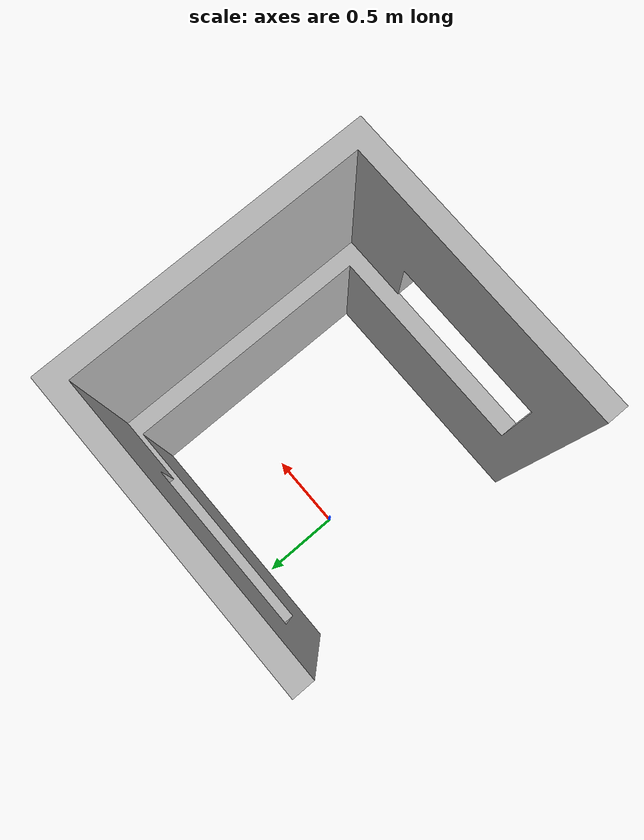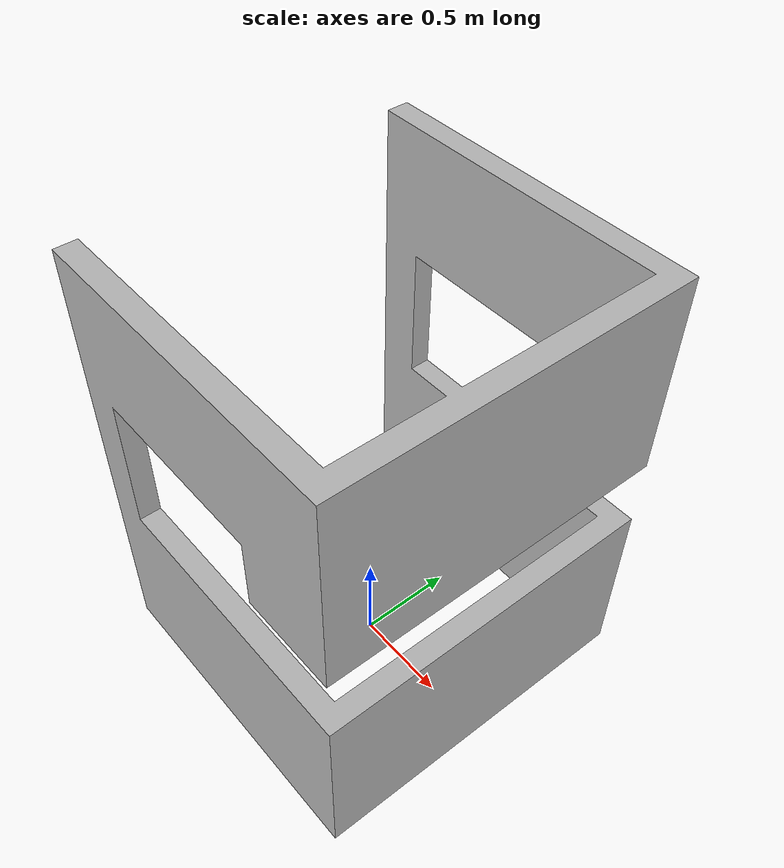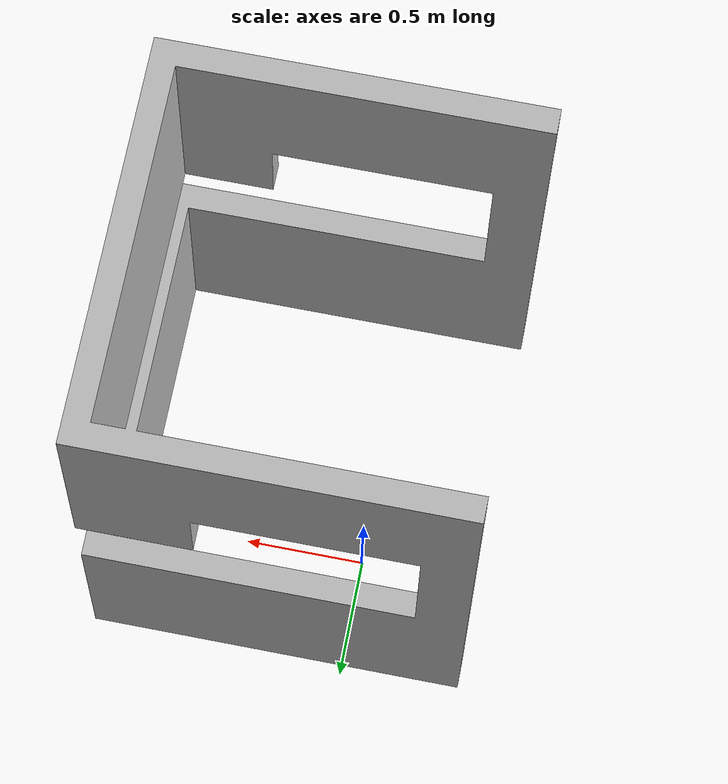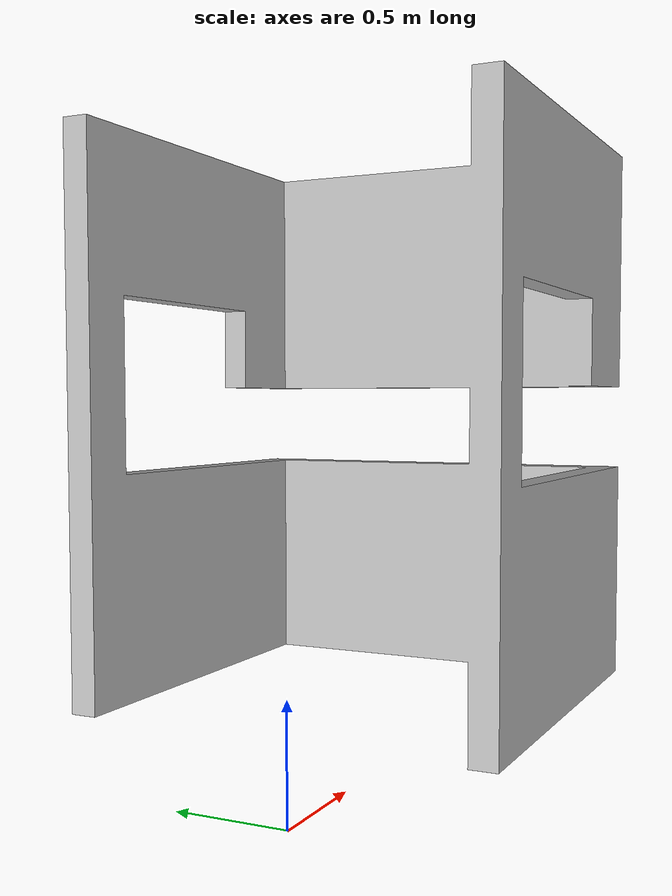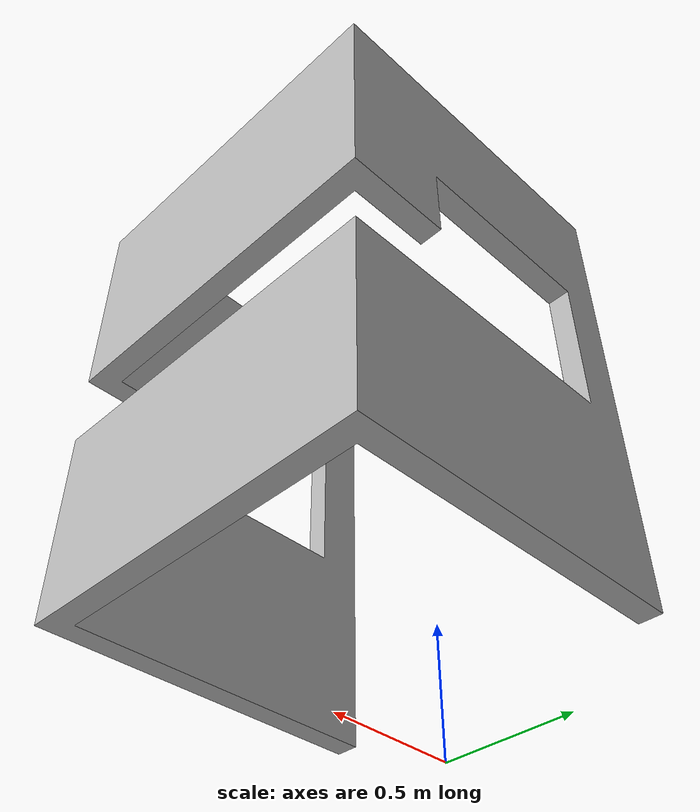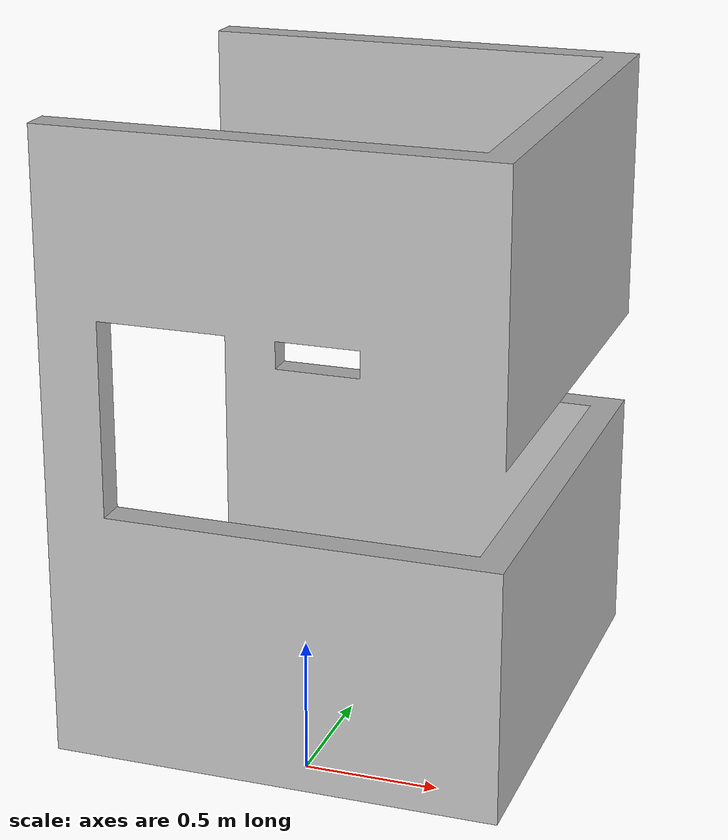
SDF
<sdf version='1.4'>

  <model name='box4'>
  <static>false</static>

  <link name="wall1">
    <pose>1 0.6 0.5 1.5708 0 -1.5708 </pose>
    <collision name="collision">
      <geometry>
        <mesh>
        <scale>1 1 1</scale>
        <uri>meshes/complex_obstacle4.dae</uri>
        </mesh>
      </geometry>
    </collision>

    <visual name="visual">
    <pose>0 0 0 0 0 0</pose>
      <geometry>
        <mesh>
        <scale>1 1 1</scale>
        <uri>meshes/complex_obstacle4.dae</uri>
        </mesh>
      </geometry>
    </visual>
  </link>

  <joint name="fix to ground wall1" type="revolute">
    <parent>world</parent>
    <child>wall1</child>
    <axis>
      <xyz>0.0 0.0 1</xyz>
      <limit>
        <lower>0</lower>
        <upper>0</upper>
      </limit>
    </axis>
  </joint>

  </model>
</sdf>
